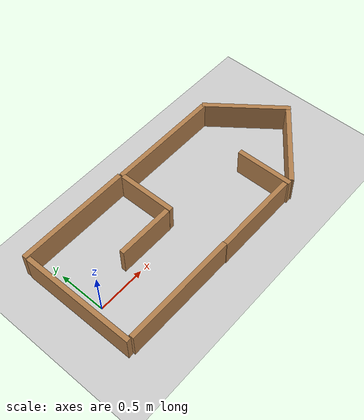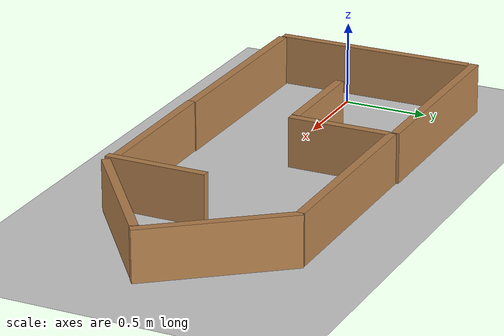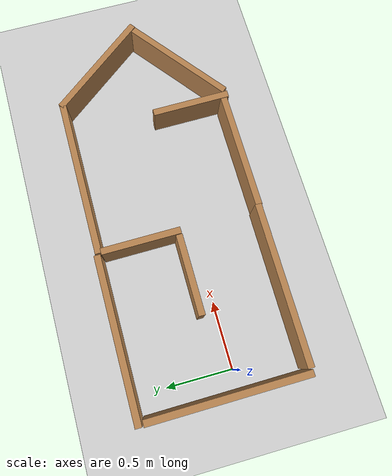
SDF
<sdf version="1.7">
 <world name="default">
  <light name="sun" type="directional">
   <pose>0 0 10 0 -0 0</pose>
   <diffuse>0.8 0.8 0.8 1</diffuse>
   <specular>0.2 0.2 0.2 1</specular>
   <attenuation>
    <range>1000</range>
    <constant>0.9</constant>
    <linear>0.01</linear>
    <quadratic>0.001</quadratic>
   </attenuation>
   <direction>-0.5 0.1 -0.9</direction>
   <spot><inner_angle>0</inner_angle><outer_angle>0</outer_angle><falloff>0</falloff></spot>
  </light>
  <model name="ground_plane">
   <static>1</static>
   <link name="link">
    <collision name="collision">
     <geometry><plane><normal>0 0 1</normal><size>100 100</size></plane></geometry>
     <surface>
      <contact><collide_bitmask>65535</collide_bitmask></contact>
      <friction><ode><mu>100</mu><mu2>50</mu2></ode></friction>
     </surface>
    </collision>
    <visual name="visual">
     <cast_shadows>0</cast_shadows>
     <geometry><plane><normal>0 0 1</normal><size>100 100</size></plane></geometry>
     <material>
      <script><uri>file://media/materials/scripts/gazebo.material</uri><name>Gazebo/Grey</name></script>
     </material>
    </visual>
   </link>
  </model>
  <gravity>0 0 -9.8</gravity>
  <magnetic_field>6e-06 2.3e-05 -4.2e-05</magnetic_field>
  <atmosphere type="adiabatic"/>
  <physics type="ode">
   <max_step_size>0.001</max_step_size>
   <real_time_factor>1</real_time_factor>
   <real_time_update_rate>1000</real_time_update_rate>
  </physics>
  <scene><ambient>0.4 0.4 0.4 1</ambient><background>0.7 0.7 0.7 1</background><shadows>1</shadows></scene>
  <spherical_coordinates>
   <surface_model>EARTH_WGS84</surface_model>
   <latitude_deg>0</latitude_deg>
   <longitude_deg>0</longitude_deg>
   <elevation>0</elevation>
   <heading_deg>0</heading_deg>
  </spherical_coordinates>
  <model name="wall120cm">
   <pose>0.477371 -0.492563 0 0 0 -0.004681</pose>
   <link name="Wall_11">
    <collision name="Wall_11_Collision">
     <geometry><box><size>1.2 0.05 0.3</size></box></geometry>
     <pose>0 0 0.15 0 -0 0</pose>
    </collision>
    <visual name="Wall_11_Visual">
     <pose>0 0 0.15 0 -0 0</pose>
     <geometry><box><size>1.2 0.05 0.3</size></box></geometry>
     <material>
      <script><uri>file://media/materials/scripts/gazebo.material</uri><name>Gazebo/Wood</name></script>
      <ambient>1 1 1 1</ambient>
     </material>
     <meta><layer>0</layer></meta>
    </visual>
   </link>
   <static>1</static>
  </model>
  <model name="wall120cm_0">
   <pose>-0.159815 0.101998 0 0 0 -1.56502</pose>
   <link name="Wall_11">
    <collision name="Wall_11_Collision">
     <geometry><box><size>1.2 0.05 0.3</size></box></geometry>
     <pose>0 0 0.15 0 -0 0</pose>
    </collision>
    <visual name="Wall_11_Visual">
     <pose>0 0 0.15 0 -0 0</pose>
     <geometry><box><size>1.2 0.05 0.3</size></box></geometry>
     <material>
      <script><uri>file://media/materials/scripts/gazebo.material</uri><name>Gazebo/Wood</name></script>
      <ambient>1 1 1 1</ambient>
     </material>
     <meta><layer>0</layer></meta>
    </visual>
   </link>
   <static>1</static>
  </model>
  <model name="wall120cm_1">
   <pose>0.417832 0.73705 0 0 -0 0</pose>
   <link name="Wall_11">
    <collision name="Wall_11_Collision">
     <geometry><box><size>1.2 0.05 0.3</size></box></geometry>
     <pose>0 0 0.15 0 -0 0</pose>
    </collision>
    <visual name="Wall_11_Visual">
     <pose>0 0 0.15 0 -0 0</pose>
     <geometry><box><size>1.2 0.05 0.3</size></box></geometry>
     <material>
      <script><uri>file://media/materials/scripts/gazebo.material</uri><name>Gazebo/Wood</name></script>
      <ambient>1 1 1 1</ambient>
     </material>
     <meta><layer>0</layer></meta>
    </visual>
   </link>
   <static>1</static>
  </model>
  <model name="wall90cm">
   <pose>1.51882 -0.500571 0 0 -0 0.000672</pose>
   <link name="Wall_6">
    <collision name="Wall_6_Collision">
     <geometry><box><size>0.9 0.05 0.3</size></box></geometry>
     <pose>0 0 0.15 0 -0 0</pose>
    </collision>
    <visual name="Wall_6_Visual">
     <pose>0 0 0.15 0 -0 0</pose>
     <geometry><box><size>0.9 0.05 0.3</size></box></geometry>
     <material>
      <script><uri>file://media/materials/scripts/gazebo.material</uri><name>Gazebo/Wood</name></script>
      <ambient>1 1 1 1</ambient>
     </material>
     <meta><layer>0</layer></meta>
    </visual>
   </link>
   <static>1</static>
  </model>
  <model name="wall120cm_2">
   <pose>1.62773 0.723941 0 0 -0 0</pose>
   <link name="Wall_11">
    <collision name="Wall_11_Collision">
     <geometry><box><size>1.2 0.05 0.3</size></box></geometry>
     <pose>0 0 0.15 0 -0 0</pose>
    </collision>
    <visual name="Wall_11_Visual">
     <pose>0 0 0.15 0 -0 0</pose>
     <geometry><box><size>1.2 0.05 0.3</size></box></geometry>
     <material>
      <script><uri>file://media/materials/scripts/gazebo.material</uri><name>Gazebo/Wood</name></script>
      <ambient>1 1 1 1</ambient>
     </material>
     <meta><layer>0</layer></meta>
    </visual>
   </link>
   <static>1</static>
  </model>
  <model name="wall90cm_0">
   <pose>2.50398 0.382017 0 0 -0 2.23101</pose>
   <link name="Wall_6">
    <collision name="Wall_6_Collision">
     <geometry><box><size>0.9 0.05 0.3</size></box></geometry>
     <pose>0 0 0.15 0 -0 0</pose>
    </collision>
    <visual name="Wall_6_Visual">
     <pose>0 0 0.15 0 -0 0</pose>
     <geometry><box><size>0.9 0.05 0.3</size></box></geometry>
     <material>
      <script><uri>file://media/materials/scripts/gazebo.material</uri><name>Gazebo/Wood</name></script>
      <ambient>1 1 1 1</ambient>
     </material>
     <meta><layer>0</layer></meta>
    </visual>
   </link>
   <static>1</static>
  </model>
  <model name="wall60cm">
   <pose>0.709867 0.127919 0 0 -0 0</pose>
   <link name="Wall_4">
    <collision name="Wall_4_Collision">
     <geometry><box><size>0.6 0.05 0.3</size></box></geometry>
     <pose>0 0 0.15 0 -0 0</pose>
    </collision>
    <visual name="Wall_4_Visual">
     <pose>0 0 0.15 0 -0 0</pose>
     <geometry><box><size>0.6 0.05 0.3</size></box></geometry>
     <material>
      <script><uri>file://media/materials/scripts/gazebo.material</uri><name>Gazebo/Wood</name></script>
      <ambient>1 1 1 1</ambient>
     </material>
     <meta><layer>0</layer></meta>
    </visual>
   </link>
   <static>1</static>
  </model>
  <model name="wall60cm_0">
   <pose>1.99714 -0.24107 0.005762 0.026439 -0.00375 -1.56481</pose>
   <link name="Wall_4">
    <collision name="Wall_4_Collision">
     <geometry><box><size>0.6 0.05 0.3</size></box></geometry>
     <pose>0 0 0.15 0 -0 0</pose>
    </collision>
    <visual name="Wall_4_Visual">
     <pose>0 0 0.15 0 -0 0</pose>
     <geometry><box><size>0.6 0.05 0.3</size></box></geometry>
     <material>
      <script><uri>file://media/materials/scripts/gazebo.material</uri><name>Gazebo/Wood</name></script>
      <ambient>1 1 1 1</ambient>
     </material>
     <meta><layer>0</layer></meta>
    </visual>
   </link>
   <static>1</static>
  </model>
  <model name="wall60cm_1">
   <pose>1.03734 0.405697 0 0 0 -1.56445</pose>
   <link name="Wall_4">
    <collision name="Wall_4_Collision">
     <geometry><box><size>0.6 0.05 0.3</size></box></geometry>
     <pose>0 0 0.15 0 -0 0</pose>
    </collision>
    <visual name="Wall_4_Visual">
     <pose>0 0 0.15 0 -0 0</pose>
     <geometry><box><size>0.6 0.05 0.3</size></box></geometry>
     <material>
      <script><uri>file://media/materials/scripts/gazebo.material</uri><name>Gazebo/Wood</name></script>
      <ambient>1 1 1 1</ambient>
     </material>
     <meta><layer>0</layer></meta>
    </visual>
   </link>
   <static>1</static>
  </model>
  <model name="wall90cm_1">
   <pose>2.38576 -0.247919 0 0 -0 0.664826</pose>
   <link name="Wall_6">
    <collision name="Wall_6_Collision">
     <geometry><box><size>0.9 0.05 0.3</size></box></geometry>
     <pose>0 0 0.15 0 -0 0</pose>
    </collision>
    <visual name="Wall_6_Visual">
     <pose>0 0 0.15 0 -0 0</pose>
     <geometry><box><size>0.9 0.05 0.3</size></box></geometry>
     <material>
      <script><uri>file://media/materials/scripts/gazebo.material</uri><name>Gazebo/Wood</name></script>
      <ambient>1 1 1 1</ambient>
     </material>
     <meta><layer>0</layer></meta>
    </visual>
   </link>
   <static>1</static>
  </model>
 </world>
</sdf>
